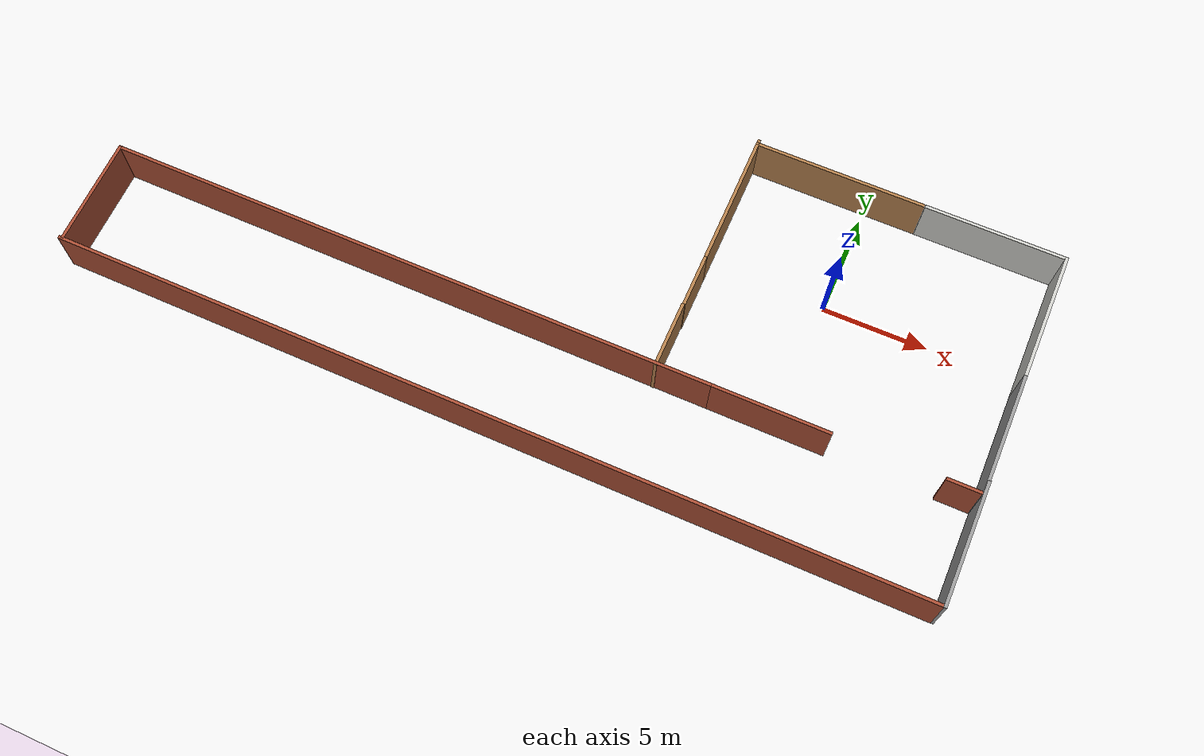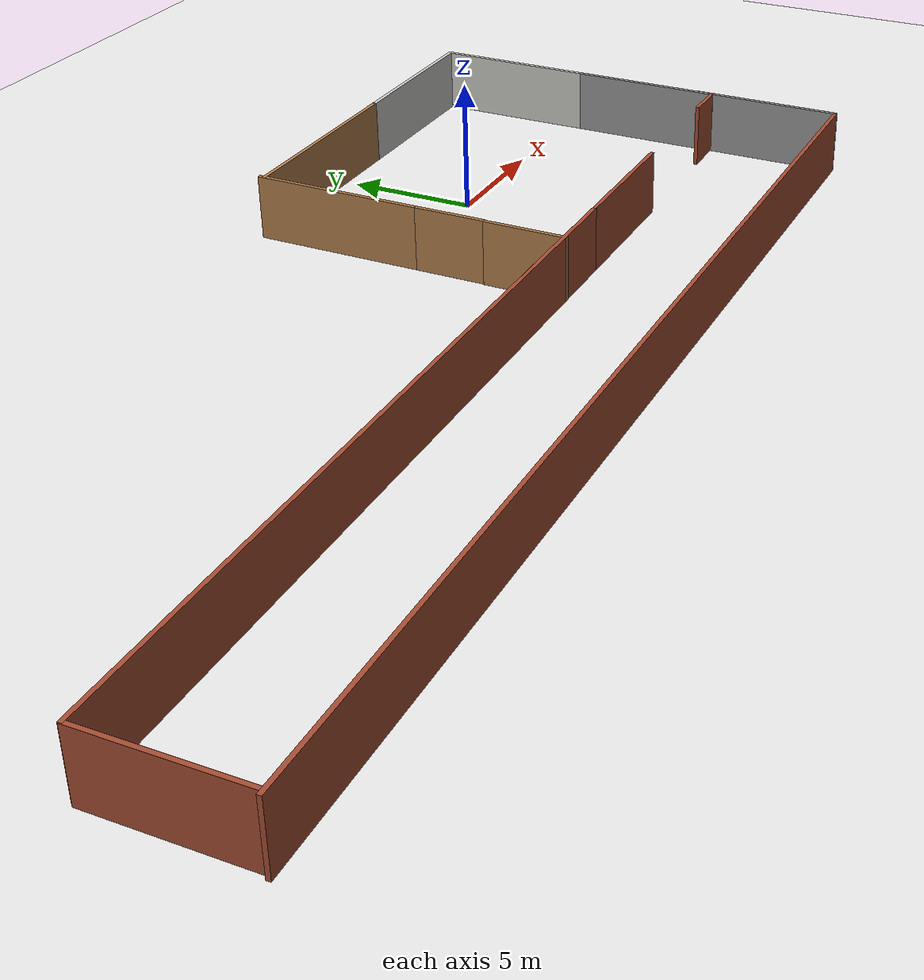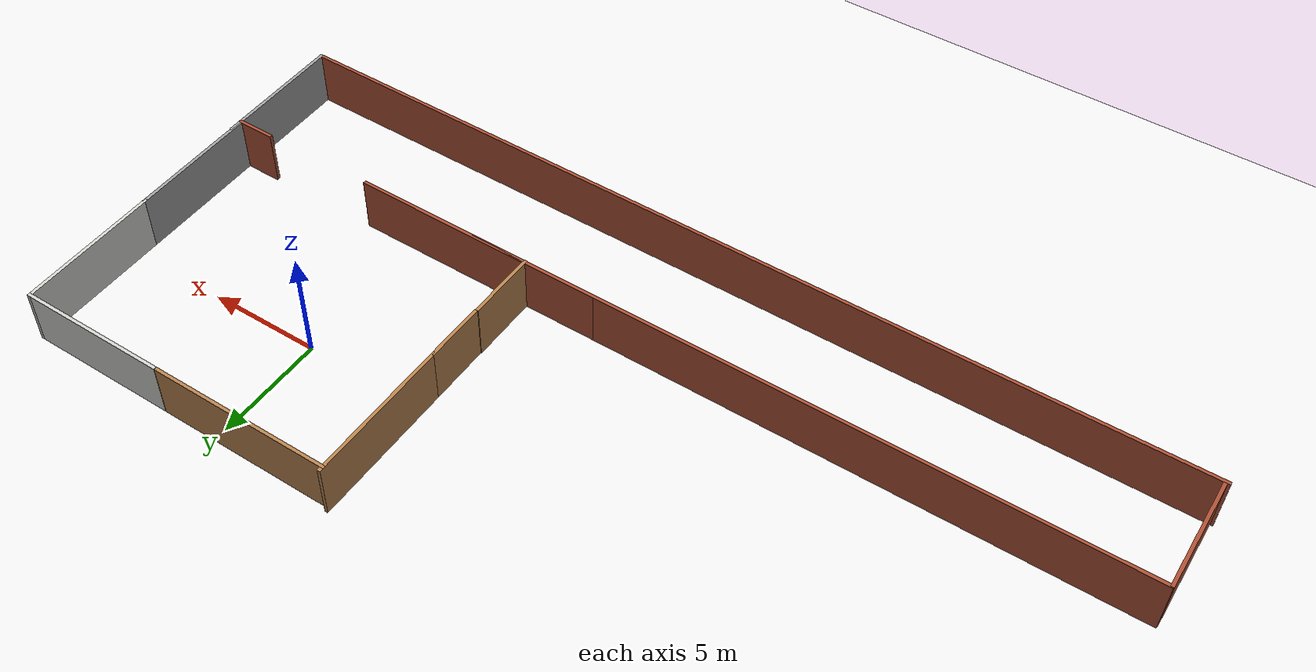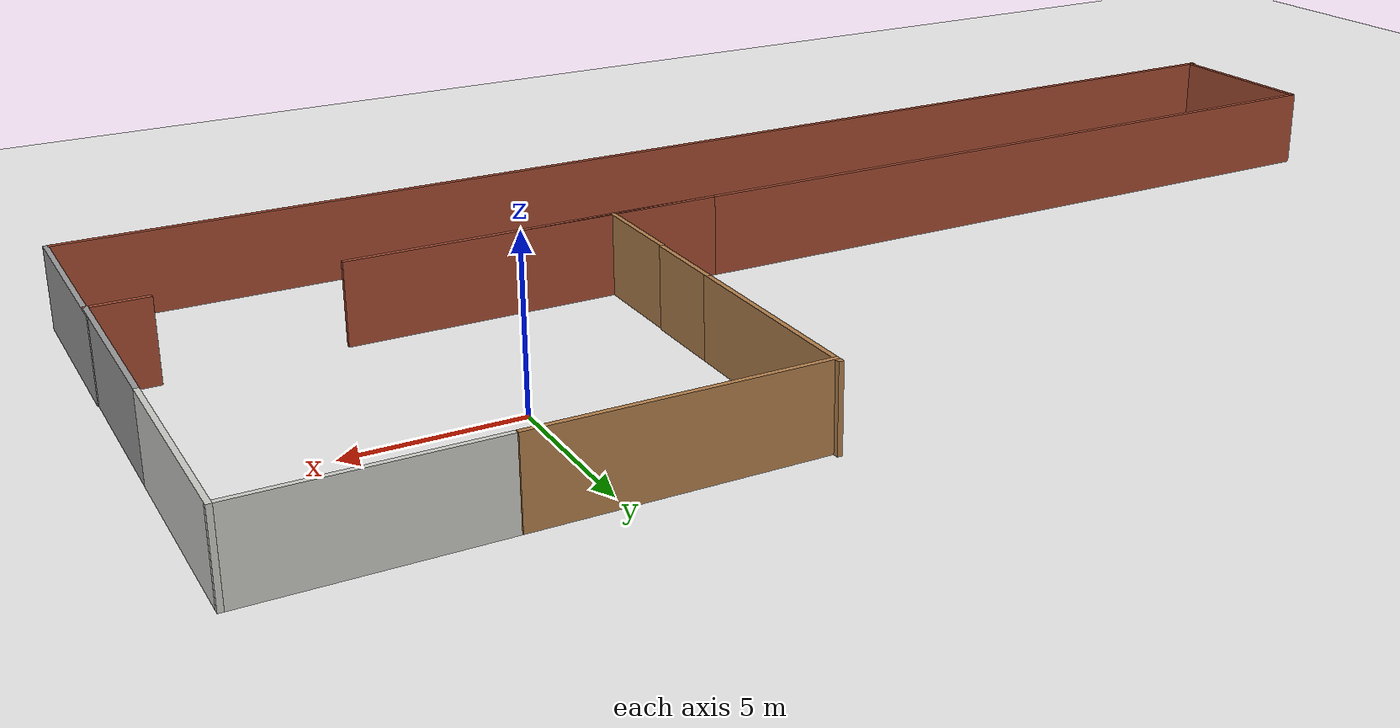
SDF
<sdf version="1.7">
 <world name="default">
  <model name="ground_plane">
   <static>1</static>
   <link name="link">
    <collision name="collision">
     <geometry><plane><normal>0 0 1</normal><size>100 100</size></plane></geometry>
     <surface>
      <contact><collide_bitmask>65535</collide_bitmask></contact>
      <friction><ode><mu>100</mu><mu2>50</mu2></ode></friction>
     </surface>
    </collision>
    <visual name="visual">
     <cast_shadows>0</cast_shadows>
     <geometry><plane><normal>0 0 1</normal><size>100 100</size></plane></geometry>
     <material>
      <script><uri>file://media/materials/scripts/gazebo.material</uri><name>Gazebo/White</name></script>
     </material>
    </visual>
   </link>
  </model>
  <light name="sun" type="directional">
   <pose>0 0 10 0 -0 0</pose>
   <diffuse>0.8 0.8 0.8 1</diffuse>
   <specular>0.2 0.2 0.2 1</specular>
   <attenuation>
    <range>1000</range>
    <constant>0.9</constant>
    <linear>0.01</linear>
    <quadratic>0.001</quadratic>
   </attenuation>
   <direction>-0.5 0.1 -0.9</direction>
   <spot><inner_angle>0</inner_angle><outer_angle>0</outer_angle><falloff>0</falloff></spot>
  </light>
  <gravity>0 0 -9.8</gravity>
  <magnetic_field>6e-06 2.3e-05 -4.2e-05</magnetic_field>
  <atmosphere type="adiabatic"/>
  <physics name="default_physics" default="0" type="ode">
   <max_step_size>0.001</max_step_size>
   <real_time_factor>1</real_time_factor>
   <real_time_update_rate>1000</real_time_update_rate>
  </physics>
  <scene><ambient>0.4 0.4 0.4 1</ambient><background>0.7 0.7 0.7 1</background><shadows>1</shadows></scene>
  <audio><device>default</device></audio>
  <spherical_coordinates>
   <surface_model>EARTH_WGS84</surface_model>
   <latitude_deg>0</latitude_deg>
   <longitude_deg>0</longitude_deg>
   <elevation>0</elevation>
   <heading_deg>0</heading_deg>
  </spherical_coordinates>
  <model name="building_modified.model">
   <link name="Wall_59">
    <pose>5.89407 4.04901 0 0 -0 1.5708</pose>
    <visual name="Wall_59_Visual">
     <pose>0 0 1.25 0 -0 0</pose>
     <geometry><box><size>6.75 0.15 2.5</size></box></geometry>
     <material>
      <script><uri>file://media/materials/scripts/gazebo.material</uri><name>Gazebo/Wood</name></script>
      <ambient>1 1 1 1</ambient>
      <shader type="pixel"/>
     </material>
     <meta><layer>0</layer></meta>
    </visual>
    <collision name="Wall_59_Collision">
     <pose>0 0 1.25 0 -0 0</pose>
     <geometry><box><size>6.75 0.15 2.5</size></box></geometry>
     <surface>
      <friction>
       <ode><mu>1</mu><mu2>1</mu2><fdir1>0 0 0</fdir1><slip1>0</slip1><slip2>0</slip2></ode>
       <torsional>
        <coefficient>1</coefficient>
        <patch_radius>0</patch_radius>
        <surface_radius>0</surface_radius>
        <use_patch_radius>1</use_patch_radius>
        <ode><slip>0</slip></ode>
       </torsional>
      </friction>
      <bounce><restitution_coefficient>0</restitution_coefficient><threshold>1e+06</threshold></bounce>
      <contact>
       <collide_without_contact>0</collide_without_contact>
       <collide_without_contact_bitmask>1</collide_without_contact_bitmask>
       <collide_bitmask>1</collide_bitmask>
       <ode>
        <soft_cfm>0</soft_cfm>
        <soft_erp>0.2</soft_erp>
        <kp>1e+13</kp>
        <kd>1</kd>
        <max_vel>0.01</max_vel>
        <min_depth>0</min_depth>
       </ode>
       <bullet>
        <split_impulse>1</split_impulse>
        <split_impulse_penetration_threshold>-0.01</split_impulse_penetration_threshold>
        <soft_cfm>0</soft_cfm>
        <soft_erp>0.2</soft_erp>
        <kp>1e+13</kp>
        <kd>1</kd>
       </bullet>
      </contact>
     </surface>
    </collision>
   </link>
   <link name="Wall_60">
    <pose>9.94407 7.18523 0 0 -0 0</pose>
    <visual name="Wall_60_Visual">
     <pose>0 0 1.25 0 -0 0</pose>
     <geometry><box><size>8.25 0.15 2.5</size></box></geometry>
     <material>
      <script><uri>file://media/materials/scripts/gazebo.material</uri><name>Gazebo/Wood</name></script>
      <ambient>1 1 1 1</ambient>
      <shader type="pixel"/>
     </material>
     <meta><layer>0</layer></meta>
    </visual>
    <collision name="Wall_60_Collision">
     <pose>0 0 1.25 0 -0 0</pose>
     <geometry><box><size>8.25 0.15 2.5</size></box></geometry>
     <surface>
      <friction>
       <ode><mu>1</mu><mu2>1</mu2><fdir1>0 0 0</fdir1><slip1>0</slip1><slip2>0</slip2></ode>
       <torsional>
        <coefficient>1</coefficient>
        <patch_radius>0</patch_radius>
        <surface_radius>0</surface_radius>
        <use_patch_radius>1</use_patch_radius>
        <ode><slip>0</slip></ode>
       </torsional>
      </friction>
      <bounce><restitution_coefficient>0</restitution_coefficient><threshold>1e+06</threshold></bounce>
      <contact>
       <collide_without_contact>0</collide_without_contact>
       <collide_without_contact_bitmask>1</collide_without_contact_bitmask>
       <collide_bitmask>1</collide_bitmask>
       <ode>
        <soft_cfm>0</soft_cfm>
        <soft_erp>0.2</soft_erp>
        <kp>1e+13</kp>
        <kd>1</kd>
        <max_vel>0.01</max_vel>
        <min_depth>0</min_depth>
       </ode>
       <bullet>
        <split_impulse>1</split_impulse>
        <split_impulse_penetration_threshold>-0.01</split_impulse_penetration_threshold>
        <soft_cfm>0</soft_cfm>
        <soft_erp>0.2</soft_erp>
        <kp>1e+13</kp>
        <kd>1</kd>
       </bullet>
      </contact>
     </surface>
    </collision>
   </link>
   <link name="Wall_66">
    <pose>8.28284 -5.06847 0 0 -0 3.14159</pose>
    <visual name="Wall_66_Visual">
     <pose>0 0 1.25 0 -0 0</pose>
     <geometry><box><size>11.5 0.15 2.5</size></box></geometry>
     <material>
      <script><uri>file://media/materials/scripts/gazebo.material</uri><name>Gazebo/Bricks</name></script>
      <ambient>1 1 1 1</ambient>
      <shader type="pixel"/>
     </material>
     <meta><layer>0</layer></meta>
    </visual>
    <collision name="Wall_66_Collision">
     <pose>0 0 1.25 0 -0 0</pose>
     <geometry><box><size>11.5 0.15 2.5</size></box></geometry>
     <surface>
      <friction>
       <ode><mu>1</mu><mu2>1</mu2><fdir1>0 0 0</fdir1><slip1>0</slip1><slip2>0</slip2></ode>
       <torsional>
        <coefficient>1</coefficient>
        <patch_radius>0</patch_radius>
        <surface_radius>0</surface_radius>
        <use_patch_radius>1</use_patch_radius>
        <ode><slip>0</slip></ode>
       </torsional>
      </friction>
      <bounce><restitution_coefficient>0</restitution_coefficient><threshold>1e+06</threshold></bounce>
      <contact>
       <collide_without_contact>0</collide_without_contact>
       <collide_without_contact_bitmask>1</collide_without_contact_bitmask>
       <collide_bitmask>1</collide_bitmask>
       <ode>
        <soft_cfm>0</soft_cfm>
        <soft_erp>0.2</soft_erp>
        <kp>1e+13</kp>
        <kd>1</kd>
        <max_vel>0.01</max_vel>
        <min_depth>0</min_depth>
       </ode>
       <bullet>
        <split_impulse>1</split_impulse>
        <split_impulse_penetration_threshold>-0.01</split_impulse_penetration_threshold>
        <soft_cfm>0</soft_cfm>
        <soft_erp>0.2</soft_erp>
        <kp>1e+13</kp>
        <kd>1</kd>
       </bullet>
      </contact>
     </surface>
    </collision>
   </link>
   <link name="Wall_69">
    <pose>5.89407 -0.550992 0 0 0 -1.5708</pose>
    <visual name="Wall_69_Visual">
     <pose>0 0 1.25 0 -0 0</pose>
     <geometry><box><size>2.75 0.15 2.5</size></box></geometry>
     <material>
      <script><uri>file://media/materials/scripts/gazebo.material</uri><name>Gazebo/Wood</name></script>
      <ambient>1 1 1 1</ambient>
      <shader type="pixel"/>
     </material>
     <meta><layer>0</layer></meta>
    </visual>
    <collision name="Wall_69_Collision">
     <pose>0 0 1.25 0 -0 0</pose>
     <geometry><box><size>2.75 0.15 2.5</size></box></geometry>
     <surface>
      <friction>
       <ode><mu>1</mu><mu2>1</mu2><fdir1>0 0 0</fdir1><slip1>0</slip1><slip2>0</slip2></ode>
       <torsional>
        <coefficient>1</coefficient>
        <patch_radius>0</patch_radius>
        <surface_radius>0</surface_radius>
        <use_patch_radius>1</use_patch_radius>
        <ode><slip>0</slip></ode>
       </torsional>
      </friction>
      <bounce><restitution_coefficient>0</restitution_coefficient><threshold>1e+06</threshold></bounce>
      <contact>
       <collide_without_contact>0</collide_without_contact>
       <collide_without_contact_bitmask>1</collide_without_contact_bitmask>
       <collide_bitmask>1</collide_bitmask>
       <ode>
        <soft_cfm>0</soft_cfm>
        <soft_erp>0.2</soft_erp>
        <kp>1e+13</kp>
        <kd>1</kd>
        <max_vel>0.01</max_vel>
        <min_depth>0</min_depth>
       </ode>
       <bullet>
        <split_impulse>1</split_impulse>
        <split_impulse_penetration_threshold>-0.01</split_impulse_penetration_threshold>
        <soft_cfm>0</soft_cfm>
        <soft_erp>0.2</soft_erp>
        <kp>1e+13</kp>
        <kd>1</kd>
       </bullet>
      </contact>
     </surface>
    </collision>
   </link>
   <link name="Wall_71">
    <pose>5.86268 -3.54343 0 0 -0 1.5708</pose>
    <inertial>
     <inertia><ixx>0</ixx><ixy>0</ixy><ixz>0</ixz><iyy>0</iyy><iyz>0</iyz><izz>0</izz></inertia>
     <mass>0</mass>
    </inertial>
    <visual name="Wall_71_Visual">
     <pose>0 0 1.25 0 -0 0</pose>
     <geometry><box><size>3.23793 0.15 2.5</size></box></geometry>
     <material>
      <script><uri>file://media/materials/scripts/gazebo.material</uri><name>Gazebo/Wood</name></script>
      <ambient>1 1 1 1</ambient>
      <shader type="pixel"/>
     </material>
     <meta><layer>0</layer></meta>
    </visual>
    <collision name="Wall_71_Collision">
     <pose>0 0 1.25 0 -0 0</pose>
     <geometry><box><size>3.23793 0.15 2.5</size></box></geometry>
     <surface>
      <friction>
       <ode><mu>1</mu><mu2>1</mu2><fdir1>0 0 0</fdir1><slip1>0</slip1><slip2>0</slip2></ode>
       <torsional>
        <coefficient>1</coefficient>
        <patch_radius>0</patch_radius>
        <surface_radius>0</surface_radius>
        <use_patch_radius>1</use_patch_radius>
        <ode><slip>0</slip></ode>
       </torsional>
      </friction>
      <bounce><restitution_coefficient>0</restitution_coefficient><threshold>1e+06</threshold></bounce>
      <contact>
       <collide_without_contact>0</collide_without_contact>
       <collide_without_contact_bitmask>1</collide_without_contact_bitmask>
       <collide_bitmask>1</collide_bitmask>
       <ode>
        <soft_cfm>0</soft_cfm>
        <soft_erp>0.2</soft_erp>
        <kp>1e+13</kp>
        <kd>1</kd>
        <max_vel>0.01</max_vel>
        <min_depth>0</min_depth>
       </ode>
       <bullet>
        <split_impulse>1</split_impulse>
        <split_impulse_penetration_threshold>-0.01</split_impulse_penetration_threshold>
        <soft_cfm>0</soft_cfm>
        <soft_erp>0.2</soft_erp>
        <kp>1e+13</kp>
        <kd>1</kd>
       </bullet>
      </contact>
     </surface>
    </collision>
   </link>
   <link name="Wall_75">
    <pose>19.9685 -5.01552 0 0 -0 0</pose>
    <visual name="Wall_75_Visual">
     <pose>0 0 1.25 0 -0 0</pose>
     <geometry><box><size>1.75 0.15 2.5</size></box></geometry>
     <material>
      <script><uri>file://media/materials/scripts/gazebo.material</uri><name>Gazebo/Bricks</name></script>
      <ambient>1 1 1 1</ambient>
      <shader type="pixel"/>
     </material>
     <meta><layer>0</layer></meta>
    </visual>
    <collision name="Wall_75_Collision">
     <pose>0 0 1.25 0 -0 0</pose>
     <geometry><box><size>1.75 0.15 2.5</size></box></geometry>
     <surface>
      <friction>
       <ode><mu>1</mu><mu2>1</mu2><fdir1>0 0 0</fdir1><slip1>0</slip1><slip2>0</slip2></ode>
       <torsional>
        <coefficient>1</coefficient>
        <patch_radius>0</patch_radius>
        <surface_radius>0</surface_radius>
        <use_patch_radius>1</use_patch_radius>
        <ode><slip>0</slip></ode>
       </torsional>
      </friction>
      <bounce><restitution_coefficient>0</restitution_coefficient><threshold>1e+06</threshold></bounce>
      <contact>
       <collide_without_contact>0</collide_without_contact>
       <collide_without_contact_bitmask>1</collide_without_contact_bitmask>
       <collide_bitmask>1</collide_bitmask>
       <ode>
        <soft_cfm>0</soft_cfm>
        <soft_erp>0.2</soft_erp>
        <kp>1e+13</kp>
        <kd>1</kd>
        <max_vel>0.01</max_vel>
        <min_depth>0</min_depth>
       </ode>
       <bullet>
        <split_impulse>1</split_impulse>
        <split_impulse_penetration_threshold>-0.01</split_impulse_penetration_threshold>
        <soft_cfm>0</soft_cfm>
        <soft_erp>0.2</soft_erp>
        <kp>1e+13</kp>
        <kd>1</kd>
       </bullet>
      </contact>
     </surface>
    </collision>
   </link>
   <link name="Wall_76">
    <pose>20.7685 -2.09052 0 0 -0 1.5708</pose>
    <visual name="Wall_76_Visual">
     <pose>0 0 1.25 0 -0 0</pose>
     <geometry><box><size>6 0.15 2.5</size></box></geometry>
     <material>
      <script><uri>file://media/materials/scripts/gazebo.material</uri><name>Gazebo/Grey</name></script>
      <ambient>1 1 1 1</ambient>
      <shader type="pixel"/>
     </material>
     <meta><layer>0</layer></meta>
    </visual>
    <collision name="Wall_76_Collision">
     <pose>0 0 1.25 0 -0 0</pose>
     <geometry><box><size>6 0.15 2.5</size></box></geometry>
     <surface>
      <friction>
       <ode><mu>1</mu><mu2>1</mu2><fdir1>0 0 0</fdir1><slip1>0</slip1><slip2>0</slip2></ode>
       <torsional>
        <coefficient>1</coefficient>
        <patch_radius>0</patch_radius>
        <surface_radius>0</surface_radius>
        <use_patch_radius>1</use_patch_radius>
        <ode><slip>0</slip></ode>
       </torsional>
      </friction>
      <bounce><restitution_coefficient>0</restitution_coefficient><threshold>1e+06</threshold></bounce>
      <contact>
       <collide_without_contact>0</collide_without_contact>
       <collide_without_contact_bitmask>1</collide_without_contact_bitmask>
       <collide_bitmask>1</collide_bitmask>
       <ode>
        <soft_cfm>0</soft_cfm>
        <soft_erp>0.2</soft_erp>
        <kp>1e+13</kp>
        <kd>1</kd>
        <max_vel>0.01</max_vel>
        <min_depth>0</min_depth>
       </ode>
       <bullet>
        <split_impulse>1</split_impulse>
        <split_impulse_penetration_threshold>-0.01</split_impulse_penetration_threshold>
        <soft_cfm>0</soft_cfm>
        <soft_erp>0.2</soft_erp>
        <kp>1e+13</kp>
        <kd>1</kd>
       </bullet>
      </contact>
     </surface>
    </collision>
   </link>
   <link name="Wall_76_clone">
    <pose>20.7969 -7.36772 0 0 -0 1.5708</pose>
    <visual name="Wall_76_Visual">
     <pose>0 0 1.25 0 -0 0</pose>
     <geometry><box><size>6 0.15 2.5</size></box></geometry>
     <material>
      <script><uri>file://media/materials/scripts/gazebo.material</uri><name>Gazebo/Grey</name></script>
      <ambient>1 1 1 1</ambient>
      <shader type="pixel"/>
     </material>
     <meta><layer>0</layer></meta>
    </visual>
    <collision name="Wall_76_Collision">
     <pose>0 0 1.25 0 -0 0</pose>
     <geometry><box><size>6 0.15 2.5</size></box></geometry>
     <surface>
      <friction>
       <ode><mu>1</mu><mu2>1</mu2><fdir1>0 0 0</fdir1><slip1>0</slip1><slip2>0</slip2></ode>
       <torsional>
        <coefficient>1</coefficient>
        <patch_radius>0</patch_radius>
        <surface_radius>0</surface_radius>
        <use_patch_radius>1</use_patch_radius>
        <ode><slip>0</slip></ode>
       </torsional>
      </friction>
      <bounce><restitution_coefficient>0</restitution_coefficient><threshold>1e+06</threshold></bounce>
      <contact>
       <collide_without_contact>0</collide_without_contact>
       <collide_without_contact_bitmask>1</collide_without_contact_bitmask>
       <collide_bitmask>1</collide_bitmask>
       <ode>
        <soft_cfm>0</soft_cfm>
        <soft_erp>0.2</soft_erp>
        <kp>1e+13</kp>
        <kd>1</kd>
        <max_vel>0.01</max_vel>
        <min_depth>0</min_depth>
       </ode>
       <bullet>
        <split_impulse>1</split_impulse>
        <split_impulse_penetration_threshold>-0.01</split_impulse_penetration_threshold>
        <soft_cfm>0</soft_cfm>
        <soft_erp>0.2</soft_erp>
        <kp>1e+13</kp>
        <kd>1</kd>
       </bullet>
      </contact>
     </surface>
    </collision>
   </link>
   <link name="Wall_81">
    <pose>20.7685 4.00948 0 0 -0 1.5708</pose>
    <visual name="Wall_81_Visual">
     <pose>0 0 1.25 0 -0 0</pose>
     <geometry><box><size>6.5 0.15 2.5</size></box></geometry>
     <material>
      <script><uri>file://media/materials/scripts/gazebo.material</uri><name>Gazebo/CeilingTiled</name></script>
      <ambient>1 1 1 1</ambient>
      <shader type="pixel"/>
     </material>
     <meta><layer>0</layer></meta>
    </visual>
    <collision name="Wall_81_Collision">
     <pose>0 0 1.25 0 -0 0</pose>
     <geometry><box><size>6.5 0.15 2.5</size></box></geometry>
     <surface>
      <friction>
       <ode><mu>1</mu><mu2>1</mu2><fdir1>0 0 0</fdir1><slip1>0</slip1><slip2>0</slip2></ode>
       <torsional>
        <coefficient>1</coefficient>
        <patch_radius>0</patch_radius>
        <surface_radius>0</surface_radius>
        <use_patch_radius>1</use_patch_radius>
        <ode><slip>0</slip></ode>
       </torsional>
      </friction>
      <bounce><restitution_coefficient>0</restitution_coefficient><threshold>1e+06</threshold></bounce>
      <contact>
       <collide_without_contact>0</collide_without_contact>
       <collide_without_contact_bitmask>1</collide_without_contact_bitmask>
       <collide_bitmask>1</collide_bitmask>
       <ode>
        <soft_cfm>0</soft_cfm>
        <soft_erp>0.2</soft_erp>
        <kp>1e+13</kp>
        <kd>1</kd>
        <max_vel>0.01</max_vel>
        <min_depth>0</min_depth>
       </ode>
       <bullet>
        <split_impulse>1</split_impulse>
        <split_impulse_penetration_threshold>-0.01</split_impulse_penetration_threshold>
        <soft_cfm>0</soft_cfm>
        <soft_erp>0.2</soft_erp>
        <kp>1e+13</kp>
        <kd>1</kd>
       </bullet>
      </contact>
     </surface>
    </collision>
   </link>
   <link name="Wall_82">
    <pose>17.4685 7.18448 0 0 -0 3.14159</pose>
    <visual name="Wall_82_Visual">
     <pose>0 0 1.25 0 -0 0</pose>
     <geometry><box><size>6.75 0.15 2.5</size></box></geometry>
     <material>
      <script><uri>file://media/materials/scripts/gazebo.material</uri><name>Gazebo/CeilingTiled</name></script>
      <ambient>1 1 1 1</ambient>
      <shader type="pixel"/>
     </material>
     <meta><layer>0</layer></meta>
    </visual>
    <collision name="Wall_82_Collision">
     <pose>0 0 1.25 0 -0 0</pose>
     <geometry><box><size>6.75 0.15 2.5</size></box></geometry>
     <surface>
      <friction>
       <ode><mu>1</mu><mu2>1</mu2><fdir1>0 0 0</fdir1><slip1>0</slip1><slip2>0</slip2></ode>
       <torsional>
        <coefficient>1</coefficient>
        <patch_radius>0</patch_radius>
        <surface_radius>0</surface_radius>
        <use_patch_radius>1</use_patch_radius>
        <ode><slip>0</slip></ode>
       </torsional>
      </friction>
      <bounce><restitution_coefficient>0</restitution_coefficient><threshold>1e+06</threshold></bounce>
      <contact>
       <collide_without_contact>0</collide_without_contact>
       <collide_without_contact_bitmask>1</collide_without_contact_bitmask>
       <collide_bitmask>1</collide_bitmask>
       <ode>
        <soft_cfm>0</soft_cfm>
        <soft_erp>0.2</soft_erp>
        <kp>1e+13</kp>
        <kd>1</kd>
        <max_vel>0.01</max_vel>
        <min_depth>0</min_depth>
       </ode>
       <bullet>
        <split_impulse>1</split_impulse>
        <split_impulse_penetration_threshold>-0.01</split_impulse_penetration_threshold>
        <soft_cfm>0</soft_cfm>
        <soft_erp>0.2</soft_erp>
        <kp>1e+13</kp>
        <kd>1</kd>
       </bullet>
      </contact>
     </surface>
    </collision>
   </link>
   <link name="Wall_88">
    <pose>-0.253282 -10.3076 0 0 -0 3.14159</pose>
    <inertial>
     <inertia><ixx>0</ixx><ixy>0</ixy><ixz>0</ixz><iyy>0</iyy><iyz>0</iyz><izz>0</izz></inertia>
     <mass>0</mass>
    </inertial>
    <visual name="Wall_88_Visual">
     <pose>0 0 1.25 0 -0 0</pose>
     <geometry><box><size>42.0031 0.15 2.5</size></box></geometry>
     <material>
      <script><uri>file://media/materials/scripts/gazebo.material</uri><name>Gazebo/Bricks</name></script>
      <ambient>1 1 1 1</ambient>
      <shader type="pixel"/>
     </material>
     <meta><layer>0</layer></meta>
    </visual>
    <collision name="Wall_88_Collision">
     <pose>0 0 1.25 0 -0 0</pose>
     <geometry><box><size>42.0031 0.15 2.5</size></box></geometry>
     <surface>
      <friction>
       <ode><mu>1</mu><mu2>1</mu2><fdir1>0 0 0</fdir1><slip1>0</slip1><slip2>0</slip2></ode>
       <torsional>
        <coefficient>1</coefficient>
        <patch_radius>0</patch_radius>
        <surface_radius>0</surface_radius>
        <use_patch_radius>1</use_patch_radius>
        <ode><slip>0</slip></ode>
       </torsional>
      </friction>
      <bounce><restitution_coefficient>0</restitution_coefficient><threshold>1e+06</threshold></bounce>
      <contact>
       <collide_without_contact>0</collide_without_contact>
       <collide_without_contact_bitmask>1</collide_without_contact_bitmask>
       <collide_bitmask>1</collide_bitmask>
       <ode>
        <soft_cfm>0</soft_cfm>
        <soft_erp>0.2</soft_erp>
        <kp>1e+13</kp>
        <kd>1</kd>
        <max_vel>0.01</max_vel>
        <min_depth>0</min_depth>
       </ode>
       <bullet>
        <split_impulse>1</split_impulse>
        <split_impulse_penetration_threshold>-0.01</split_impulse_penetration_threshold>
        <soft_cfm>0</soft_cfm>
        <soft_erp>0.2</soft_erp>
        <kp>1e+13</kp>
        <kd>1</kd>
       </bullet>
      </contact>
     </surface>
    </collision>
   </link>
   <link name="Wall_91">
    <pose>-6.36992 -5.06851 0 0 -0 3.14159</pose>
    <inertial>
     <inertia><ixx>0</ixx><ixy>0</ixy><ixz>0</ixz><iyy>0</iyy><iyz>0</iyz><izz>0</izz></inertia>
     <mass>0</mass>
    </inertial>
    <visual name="Wall_91_Visual">
     <pose>0 0 1.25 0 -0 0</pose>
     <geometry><box><size>29.6594 0.15 2.5</size></box></geometry>
     <material>
      <script><uri>file://media/materials/scripts/gazebo.material</uri><name>Gazebo/Bricks</name></script>
      <ambient>1 1 1 1</ambient>
      <shader type="pixel"/>
     </material>
     <meta><layer>0</layer></meta>
    </visual>
    <collision name="Wall_91_Collision">
     <pose>0 0 1.25 0 -0 0</pose>
     <geometry><box><size>29.6594 0.15 2.5</size></box></geometry>
     <surface>
      <friction>
       <ode><mu>1</mu><mu2>1</mu2><fdir1>0 0 0</fdir1><slip1>0</slip1><slip2>0</slip2></ode>
       <torsional>
        <coefficient>1</coefficient>
        <patch_radius>0</patch_radius>
        <surface_radius>0</surface_radius>
        <use_patch_radius>1</use_patch_radius>
        <ode><slip>0</slip></ode>
       </torsional>
      </friction>
      <bounce><restitution_coefficient>0</restitution_coefficient><threshold>1e+06</threshold></bounce>
      <contact>
       <collide_without_contact>0</collide_without_contact>
       <collide_without_contact_bitmask>1</collide_without_contact_bitmask>
       <collide_bitmask>1</collide_bitmask>
       <ode>
        <soft_cfm>0</soft_cfm>
        <soft_erp>0.2</soft_erp>
        <kp>1e+13</kp>
        <kd>1</kd>
        <max_vel>0.01</max_vel>
        <min_depth>0</min_depth>
       </ode>
       <bullet>
        <split_impulse>1</split_impulse>
        <split_impulse_penetration_threshold>-0.01</split_impulse_penetration_threshold>
        <soft_cfm>0</soft_cfm>
        <soft_erp>0.2</soft_erp>
        <kp>1e+13</kp>
        <kd>1</kd>
       </bullet>
      </contact>
     </surface>
    </collision>
   </link>
   <link name="Wall_97">
    <pose>-21.1074 -7.65882 0 0 0 -1.5552</pose>
    <inertial>
     <inertia><ixx>0</ixx><ixy>0</ixy><ixz>0</ixz><iyy>0</iyy><iyz>0</iyz><izz>0</izz></inertia>
     <mass>0</mass>
    </inertial>
    <visual name="Wall_97_Visual">
     <pose>0 0 1.25 0 -0 0</pose>
     <geometry><box><size>5.26857 0.15 2.5</size></box></geometry>
     <material>
      <script><uri>file://media/materials/scripts/gazebo.material</uri><name>Gazebo/Bricks</name></script>
      <ambient>1 1 1 1</ambient>
      <shader type="pixel"/>
     </material>
     <meta><layer>0</layer></meta>
    </visual>
    <collision name="Wall_97_Collision">
     <pose>0 0 1.25 0 -0 0</pose>
     <geometry><box><size>5.26857 0.15 2.5</size></box></geometry>
     <surface>
      <friction>
       <ode><mu>1</mu><mu2>1</mu2><fdir1>0 0 0</fdir1><slip1>0</slip1><slip2>0</slip2></ode>
       <torsional>
        <coefficient>1</coefficient>
        <patch_radius>0</patch_radius>
        <surface_radius>0</surface_radius>
        <use_patch_radius>1</use_patch_radius>
        <ode><slip>0</slip></ode>
       </torsional>
      </friction>
      <bounce><restitution_coefficient>0</restitution_coefficient><threshold>1e+06</threshold></bounce>
      <contact>
       <collide_without_contact>0</collide_without_contact>
       <collide_without_contact_bitmask>1</collide_without_contact_bitmask>
       <collide_bitmask>1</collide_bitmask>
       <ode>
        <soft_cfm>0</soft_cfm>
        <soft_erp>0.2</soft_erp>
        <kp>1e+13</kp>
        <kd>1</kd>
        <max_vel>0.01</max_vel>
        <min_depth>0</min_depth>
       </ode>
       <bullet>
        <split_impulse>1</split_impulse>
        <split_impulse_penetration_threshold>-0.01</split_impulse_penetration_threshold>
        <soft_cfm>0</soft_cfm>
        <soft_erp>0.2</soft_erp>
        <kp>1e+13</kp>
        <kd>1</kd>
       </bullet>
      </contact>
     </surface>
    </collision>
   </link>
   <static>1</static>
   <pose>-11.5395 -1.66476 0 0 -0 0</pose>
  </model>
 </world>
</sdf>
